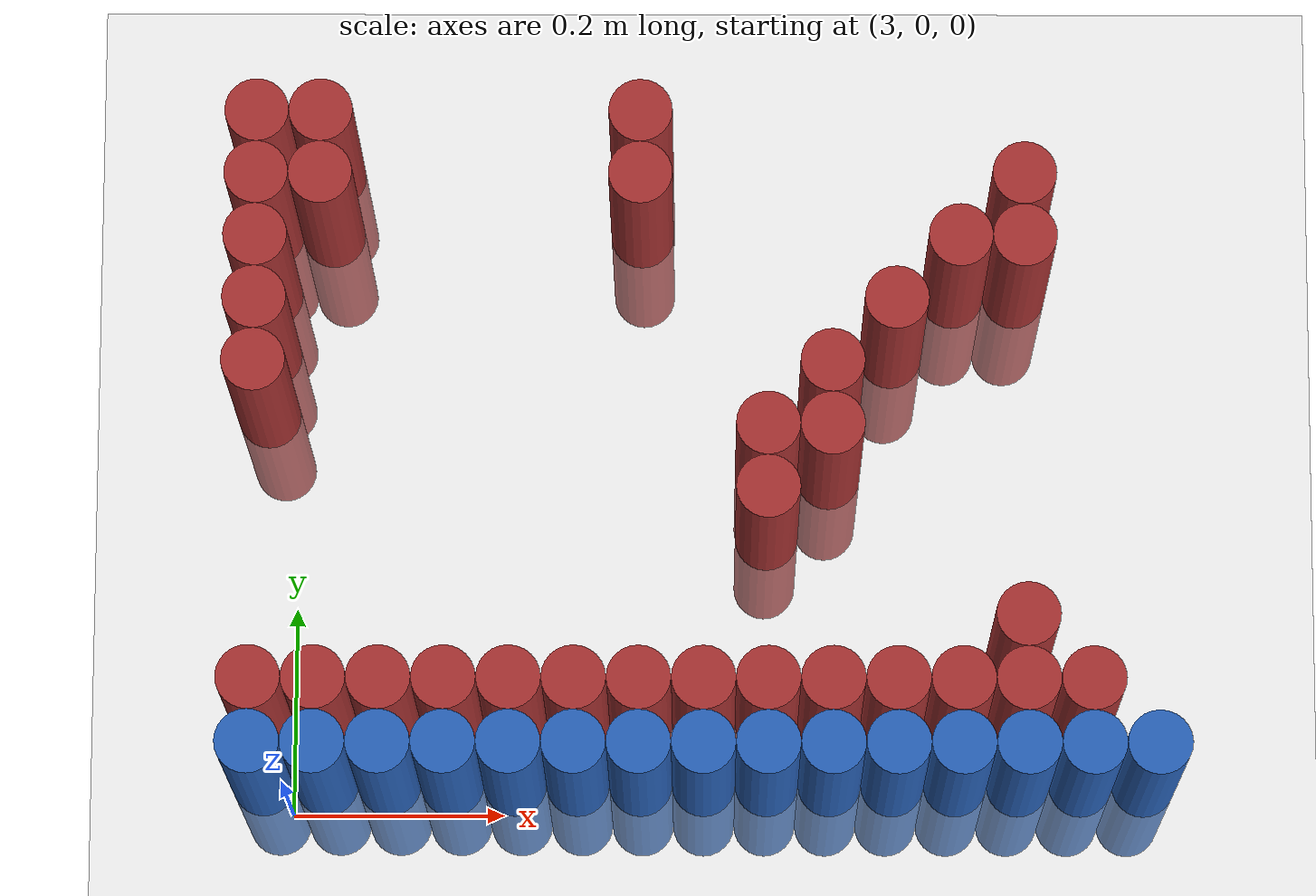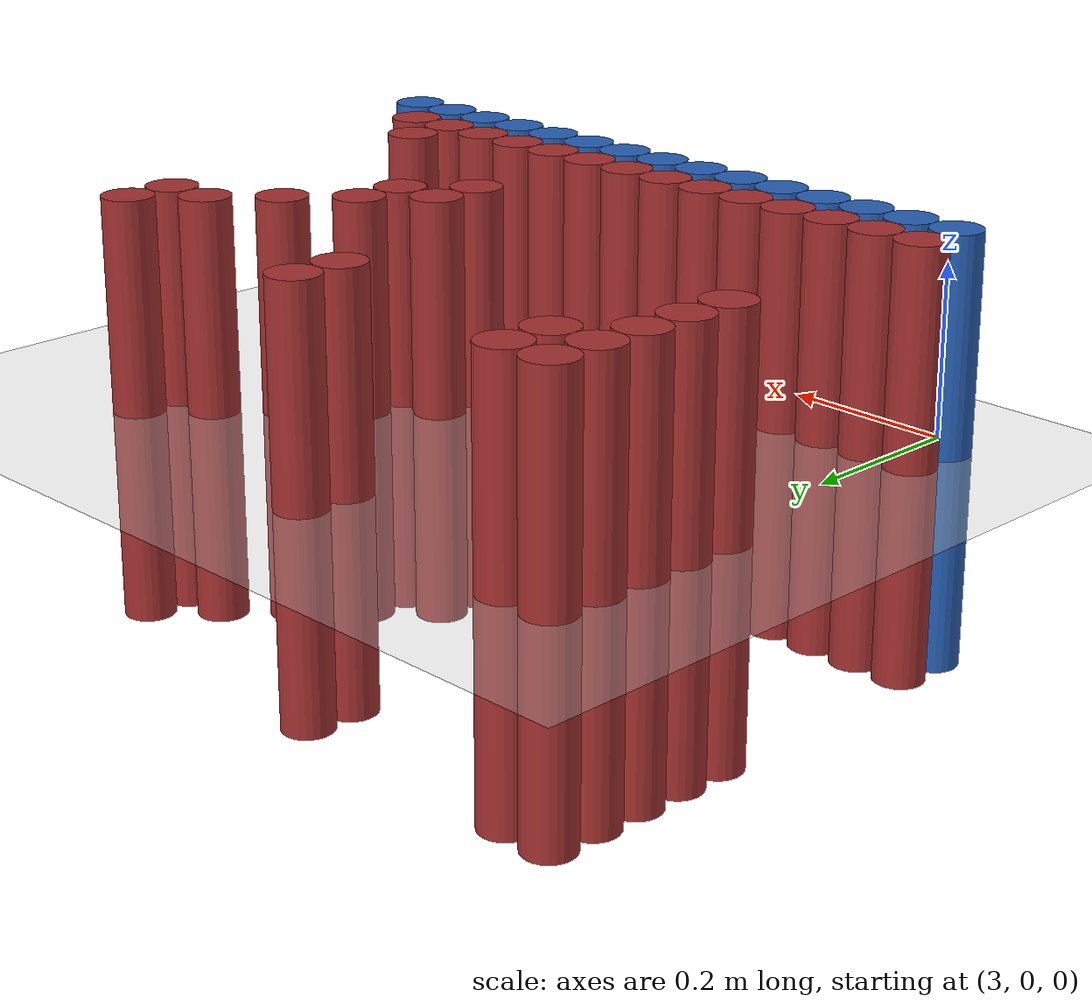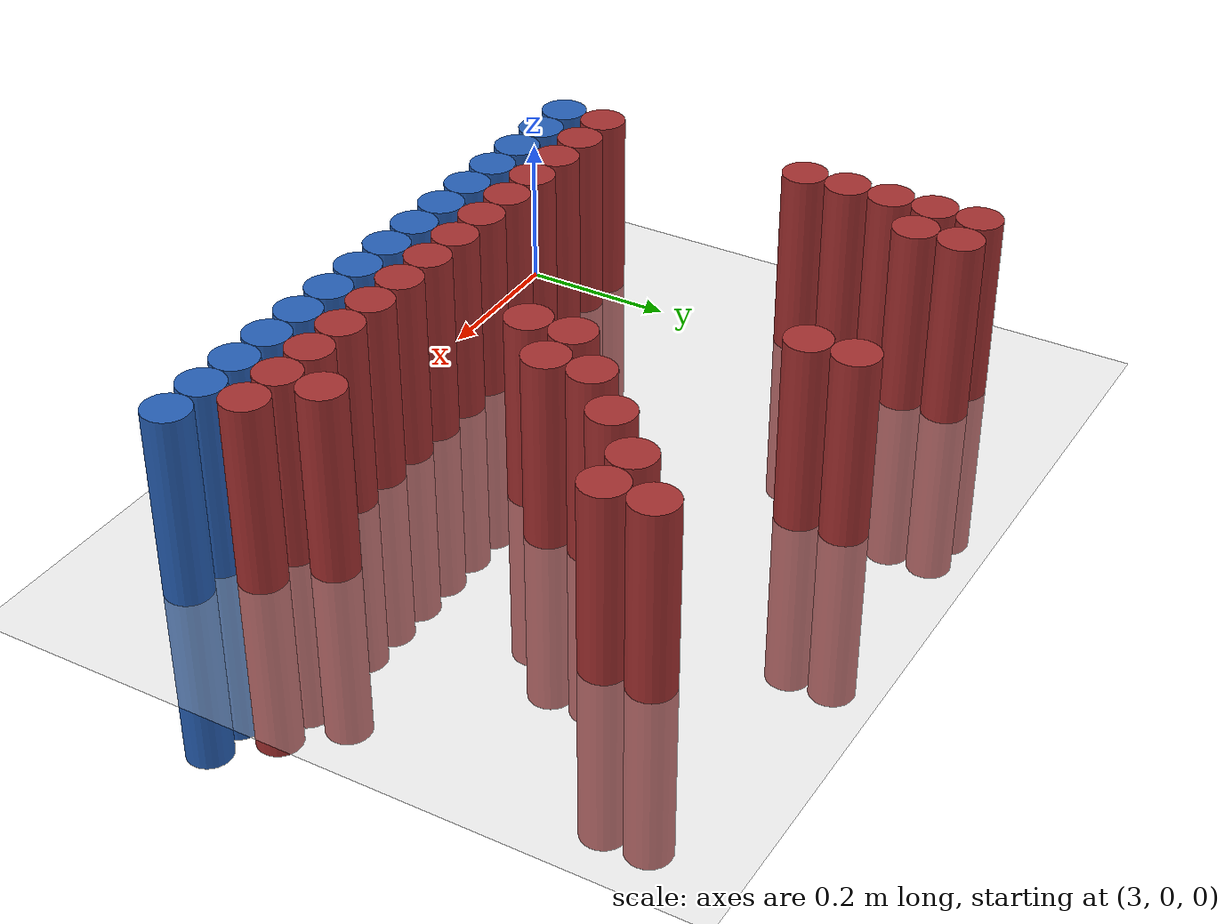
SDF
<sdf version="1.6">
 <world name="default">
  <model name="ground_plane">
   <static>1</static>
   <link name="link">
    <collision name="collision">
     <geometry><plane><normal>0 0 1</normal><size>100 100</size></plane></geometry>
     <surface><friction><ode><mu>100</mu><mu2>50</mu2></ode></friction></surface>
    </collision>
    <visual name="visual">
     <cast_shadows>0</cast_shadows>
     <geometry><plane><normal>0 0 1</normal><size>100 100</size></plane></geometry>
     <material>
      <script><uri>file://media/materials/scripts/gazebo.material</uri><name>Gazebo/Grey</name></script>
     </material>
    </visual>
   </link>
  </model>
  <model name="unit_cylinder_216">
   <static>1</static>
   <pose>2.970000 0.630000 0.000000 0.000000 0.000000 0.000000</pose>
   <link name="link">
    <inertial>
     <mass>1</mass>
     <inertia><ixx>0.145833</ixx><ixy>0</ixy><ixz>0</ixz><iyy>0.145833</iyy><iyz>0</iyz><izz>0.125</izz></inertia>
    </inertial>
    <collision name="collision">
     <geometry><cylinder><radius>0.030000</radius><length>0.5</length></cylinder></geometry>
    </collision>
    <visual name="visual">
     <geometry><cylinder><radius>0.030000</radius><length>0.5</length></cylinder></geometry>
     <material>
      <ambient>0.648000 0.192000 0.192000 1</ambient>
      <diffuse>0.648000 0.192000 0.192000 1</diffuse>
     </material>
     <material>
      <script><name>Gazebo/Grey</name><uri>file://media/materials/scripts/gazebo.material</uri></script>
     </material>
    </visual>
   </link>
  </model>
  <model name="unit_cylinder_217">
   <static>1</static>
   <pose>3.030000 0.630000 0.000000 0.000000 0.000000 0.000000</pose>
   <link name="link">
    <inertial>
     <mass>1</mass>
     <inertia><ixx>0.145833</ixx><ixy>0</ixy><ixz>0</ixz><iyy>0.145833</iyy><iyz>0</iyz><izz>0.125</izz></inertia>
    </inertial>
    <collision name="collision">
     <geometry><cylinder><radius>0.030000</radius><length>0.5</length></cylinder></geometry>
    </collision>
    <visual name="visual">
     <geometry><cylinder><radius>0.030000</radius><length>0.5</length></cylinder></geometry>
     <material>
      <ambient>0.648000 0.192000 0.192000 1</ambient>
      <diffuse>0.648000 0.192000 0.192000 1</diffuse>
     </material>
     <material>
      <script><name>Gazebo/Grey</name><uri>file://media/materials/scripts/gazebo.material</uri></script>
     </material>
    </visual>
   </link>
  </model>
  <model name="unit_cylinder_218">
   <static>1</static>
   <pose>3.330000 0.630000 0.000000 0.000000 0.000000 0.000000</pose>
   <link name="link">
    <inertial>
     <mass>1</mass>
     <inertia><ixx>0.145833</ixx><ixy>0</ixy><ixz>0</ixz><iyy>0.145833</iyy><iyz>0</iyz><izz>0.125</izz></inertia>
    </inertial>
    <collision name="collision">
     <geometry><cylinder><radius>0.030000</radius><length>0.5</length></cylinder></geometry>
    </collision>
    <visual name="visual">
     <geometry><cylinder><radius>0.030000</radius><length>0.5</length></cylinder></geometry>
     <material>
      <ambient>0.648000 0.192000 0.192000 1</ambient>
      <diffuse>0.648000 0.192000 0.192000 1</diffuse>
     </material>
     <material>
      <script><name>Gazebo/Grey</name><uri>file://media/materials/scripts/gazebo.material</uri></script>
     </material>
    </visual>
   </link>
  </model>
  <model name="unit_cylinder_229">
   <static>1</static>
   <pose>2.970000 0.570000 0.000000 0.000000 0.000000 0.000000</pose>
   <link name="link">
    <inertial>
     <mass>1</mass>
     <inertia><ixx>0.145833</ixx><ixy>0</ixy><ixz>0</ixz><iyy>0.145833</iyy><iyz>0</iyz><izz>0.125</izz></inertia>
    </inertial>
    <collision name="collision">
     <geometry><cylinder><radius>0.030000</radius><length>0.5</length></cylinder></geometry>
    </collision>
    <visual name="visual">
     <geometry><cylinder><radius>0.030000</radius><length>0.5</length></cylinder></geometry>
     <material>
      <ambient>0.648000 0.192000 0.192000 1</ambient>
      <diffuse>0.648000 0.192000 0.192000 1</diffuse>
     </material>
     <material>
      <script><name>Gazebo/Grey</name><uri>file://media/materials/scripts/gazebo.material</uri></script>
     </material>
    </visual>
   </link>
  </model>
  <model name="unit_cylinder_230">
   <static>1</static>
   <pose>3.030000 0.570000 0.000000 0.000000 0.000000 0.000000</pose>
   <link name="link">
    <inertial>
     <mass>1</mass>
     <inertia><ixx>0.145833</ixx><ixy>0</ixy><ixz>0</ixz><iyy>0.145833</iyy><iyz>0</iyz><izz>0.125</izz></inertia>
    </inertial>
    <collision name="collision">
     <geometry><cylinder><radius>0.030000</radius><length>0.5</length></cylinder></geometry>
    </collision>
    <visual name="visual">
     <geometry><cylinder><radius>0.030000</radius><length>0.5</length></cylinder></geometry>
     <material>
      <ambient>0.648000 0.192000 0.192000 1</ambient>
      <diffuse>0.648000 0.192000 0.192000 1</diffuse>
     </material>
     <material>
      <script><name>Gazebo/Grey</name><uri>file://media/materials/scripts/gazebo.material</uri></script>
     </material>
    </visual>
   </link>
  </model>
  <model name="unit_cylinder_231">
   <static>1</static>
   <pose>3.330000 0.570000 0.000000 0.000000 0.000000 0.000000</pose>
   <link name="link">
    <inertial>
     <mass>1</mass>
     <inertia><ixx>0.145833</ixx><ixy>0</ixy><ixz>0</ixz><iyy>0.145833</iyy><iyz>0</iyz><izz>0.125</izz></inertia>
    </inertial>
    <collision name="collision">
     <geometry><cylinder><radius>0.030000</radius><length>0.5</length></cylinder></geometry>
    </collision>
    <visual name="visual">
     <geometry><cylinder><radius>0.030000</radius><length>0.5</length></cylinder></geometry>
     <material>
      <ambient>0.648000 0.192000 0.192000 1</ambient>
      <diffuse>0.648000 0.192000 0.192000 1</diffuse>
     </material>
     <material>
      <script><name>Gazebo/Grey</name><uri>file://media/materials/scripts/gazebo.material</uri></script>
     </material>
    </visual>
   </link>
  </model>
  <model name="unit_cylinder_232">
   <static>1</static>
   <pose>3.690000 0.570000 0.000000 0.000000 0.000000 0.000000</pose>
   <link name="link">
    <inertial>
     <mass>1</mass>
     <inertia><ixx>0.145833</ixx><ixy>0</ixy><ixz>0</ixz><iyy>0.145833</iyy><iyz>0</iyz><izz>0.125</izz></inertia>
    </inertial>
    <collision name="collision">
     <geometry><cylinder><radius>0.030000</radius><length>0.5</length></cylinder></geometry>
    </collision>
    <visual name="visual">
     <geometry><cylinder><radius>0.030000</radius><length>0.5</length></cylinder></geometry>
     <material>
      <ambient>0.648000 0.192000 0.192000 1</ambient>
      <diffuse>0.648000 0.192000 0.192000 1</diffuse>
     </material>
     <material>
      <script><name>Gazebo/Grey</name><uri>file://media/materials/scripts/gazebo.material</uri></script>
     </material>
    </visual>
   </link>
  </model>
  <model name="unit_cylinder_240">
   <static>1</static>
   <pose>2.970000 0.510000 0.000000 0.000000 0.000000 0.000000</pose>
   <link name="link">
    <inertial>
     <mass>1</mass>
     <inertia><ixx>0.145833</ixx><ixy>0</ixy><ixz>0</ixz><iyy>0.145833</iyy><iyz>0</iyz><izz>0.125</izz></inertia>
    </inertial>
    <collision name="collision">
     <geometry><cylinder><radius>0.030000</radius><length>0.5</length></cylinder></geometry>
    </collision>
    <visual name="visual">
     <geometry><cylinder><radius>0.030000</radius><length>0.5</length></cylinder></geometry>
     <material>
      <ambient>0.648000 0.192000 0.192000 1</ambient>
      <diffuse>0.648000 0.192000 0.192000 1</diffuse>
     </material>
     <material>
      <script><name>Gazebo/Grey</name><uri>file://media/materials/scripts/gazebo.material</uri></script>
     </material>
    </visual>
   </link>
  </model>
  <model name="unit_cylinder_241">
   <static>1</static>
   <pose>3.630000 0.510000 0.000000 0.000000 0.000000 0.000000</pose>
   <link name="link">
    <inertial>
     <mass>1</mass>
     <inertia><ixx>0.145833</ixx><ixy>0</ixy><ixz>0</ixz><iyy>0.145833</iyy><iyz>0</iyz><izz>0.125</izz></inertia>
    </inertial>
    <collision name="collision">
     <geometry><cylinder><radius>0.030000</radius><length>0.5</length></cylinder></geometry>
    </collision>
    <visual name="visual">
     <geometry><cylinder><radius>0.030000</radius><length>0.5</length></cylinder></geometry>
     <material>
      <ambient>0.648000 0.192000 0.192000 1</ambient>
      <diffuse>0.648000 0.192000 0.192000 1</diffuse>
     </material>
     <material>
      <script><name>Gazebo/Grey</name><uri>file://media/materials/scripts/gazebo.material</uri></script>
     </material>
    </visual>
   </link>
  </model>
  <model name="unit_cylinder_242">
   <static>1</static>
   <pose>3.690000 0.510000 0.000000 0.000000 0.000000 0.000000</pose>
   <link name="link">
    <inertial>
     <mass>1</mass>
     <inertia><ixx>0.145833</ixx><ixy>0</ixy><ixz>0</ixz><iyy>0.145833</iyy><iyz>0</iyz><izz>0.125</izz></inertia>
    </inertial>
    <collision name="collision">
     <geometry><cylinder><radius>0.030000</radius><length>0.5</length></cylinder></geometry>
    </collision>
    <visual name="visual">
     <geometry><cylinder><radius>0.030000</radius><length>0.5</length></cylinder></geometry>
     <material>
      <ambient>0.648000 0.192000 0.192000 1</ambient>
      <diffuse>0.648000 0.192000 0.192000 1</diffuse>
     </material>
     <material>
      <script><name>Gazebo/Grey</name><uri>file://media/materials/scripts/gazebo.material</uri></script>
     </material>
    </visual>
   </link>
  </model>
  <model name="unit_cylinder_249">
   <static>1</static>
   <pose>2.970000 0.450000 0.000000 0.000000 0.000000 0.000000</pose>
   <link name="link">
    <inertial>
     <mass>1</mass>
     <inertia><ixx>0.145833</ixx><ixy>0</ixy><ixz>0</ixz><iyy>0.145833</iyy><iyz>0</iyz><izz>0.125</izz></inertia>
    </inertial>
    <collision name="collision">
     <geometry><cylinder><radius>0.030000</radius><length>0.5</length></cylinder></geometry>
    </collision>
    <visual name="visual">
     <geometry><cylinder><radius>0.030000</radius><length>0.5</length></cylinder></geometry>
     <material>
      <ambient>0.648000 0.192000 0.192000 1</ambient>
      <diffuse>0.648000 0.192000 0.192000 1</diffuse>
     </material>
     <material>
      <script><name>Gazebo/Grey</name><uri>file://media/materials/scripts/gazebo.material</uri></script>
     </material>
    </visual>
   </link>
  </model>
  <model name="unit_cylinder_250">
   <static>1</static>
   <pose>3.570000 0.450000 0.000000 0.000000 0.000000 0.000000</pose>
   <link name="link">
    <inertial>
     <mass>1</mass>
     <inertia><ixx>0.145833</ixx><ixy>0</ixy><ixz>0</ixz><iyy>0.145833</iyy><iyz>0</iyz><izz>0.125</izz></inertia>
    </inertial>
    <collision name="collision">
     <geometry><cylinder><radius>0.030000</radius><length>0.5</length></cylinder></geometry>
    </collision>
    <visual name="visual">
     <geometry><cylinder><radius>0.030000</radius><length>0.5</length></cylinder></geometry>
     <material>
      <ambient>0.648000 0.192000 0.192000 1</ambient>
      <diffuse>0.648000 0.192000 0.192000 1</diffuse>
     </material>
     <material>
      <script><name>Gazebo/Grey</name><uri>file://media/materials/scripts/gazebo.material</uri></script>
     </material>
    </visual>
   </link>
  </model>
  <model name="unit_cylinder_256">
   <static>1</static>
   <pose>2.970000 0.390000 0.000000 0.000000 0.000000 0.000000</pose>
   <link name="link">
    <inertial>
     <mass>1</mass>
     <inertia><ixx>0.145833</ixx><ixy>0</ixy><ixz>0</ixz><iyy>0.145833</iyy><iyz>0</iyz><izz>0.125</izz></inertia>
    </inertial>
    <collision name="collision">
     <geometry><cylinder><radius>0.030000</radius><length>0.5</length></cylinder></geometry>
    </collision>
    <visual name="visual">
     <geometry><cylinder><radius>0.030000</radius><length>0.5</length></cylinder></geometry>
     <material>
      <ambient>0.648000 0.192000 0.192000 1</ambient>
      <diffuse>0.648000 0.192000 0.192000 1</diffuse>
     </material>
     <material>
      <script><name>Gazebo/Grey</name><uri>file://media/materials/scripts/gazebo.material</uri></script>
     </material>
    </visual>
   </link>
  </model>
  <model name="unit_cylinder_257">
   <static>1</static>
   <pose>3.510000 0.390000 0.000000 0.000000 0.000000 0.000000</pose>
   <link name="link">
    <inertial>
     <mass>1</mass>
     <inertia><ixx>0.145833</ixx><ixy>0</ixy><ixz>0</ixz><iyy>0.145833</iyy><iyz>0</iyz><izz>0.125</izz></inertia>
    </inertial>
    <collision name="collision">
     <geometry><cylinder><radius>0.030000</radius><length>0.5</length></cylinder></geometry>
    </collision>
    <visual name="visual">
     <geometry><cylinder><radius>0.030000</radius><length>0.5</length></cylinder></geometry>
     <material>
      <ambient>0.648000 0.192000 0.192000 1</ambient>
      <diffuse>0.648000 0.192000 0.192000 1</diffuse>
     </material>
     <material>
      <script><name>Gazebo/Grey</name><uri>file://media/materials/scripts/gazebo.material</uri></script>
     </material>
    </visual>
   </link>
  </model>
  <model name="unit_cylinder_264">
   <static>1</static>
   <pose>3.450000 0.330000 0.000000 0.000000 0.000000 0.000000</pose>
   <link name="link">
    <inertial>
     <mass>1</mass>
     <inertia><ixx>0.145833</ixx><ixy>0</ixy><ixz>0</ixz><iyy>0.145833</iyy><iyz>0</iyz><izz>0.125</izz></inertia>
    </inertial>
    <collision name="collision">
     <geometry><cylinder><radius>0.030000</radius><length>0.5</length></cylinder></geometry>
    </collision>
    <visual name="visual">
     <geometry><cylinder><radius>0.030000</radius><length>0.5</length></cylinder></geometry>
     <material>
      <ambient>0.648000 0.192000 0.192000 1</ambient>
      <diffuse>0.648000 0.192000 0.192000 1</diffuse>
     </material>
     <material>
      <script><name>Gazebo/Grey</name><uri>file://media/materials/scripts/gazebo.material</uri></script>
     </material>
    </visual>
   </link>
  </model>
  <model name="unit_cylinder_265">
   <static>1</static>
   <pose>3.510000 0.330000 0.000000 0.000000 0.000000 0.000000</pose>
   <link name="link">
    <inertial>
     <mass>1</mass>
     <inertia><ixx>0.145833</ixx><ixy>0</ixy><ixz>0</ixz><iyy>0.145833</iyy><iyz>0</iyz><izz>0.125</izz></inertia>
    </inertial>
    <collision name="collision">
     <geometry><cylinder><radius>0.030000</radius><length>0.5</length></cylinder></geometry>
    </collision>
    <visual name="visual">
     <geometry><cylinder><radius>0.030000</radius><length>0.5</length></cylinder></geometry>
     <material>
      <ambient>0.648000 0.192000 0.192000 1</ambient>
      <diffuse>0.648000 0.192000 0.192000 1</diffuse>
     </material>
     <material>
      <script><name>Gazebo/Grey</name><uri>file://media/materials/scripts/gazebo.material</uri></script>
     </material>
    </visual>
   </link>
  </model>
  <model name="unit_cylinder_269">
   <static>1</static>
   <pose>3.450000 0.270000 0.000000 0.000000 0.000000 0.000000</pose>
   <link name="link">
    <inertial>
     <mass>1</mass>
     <inertia><ixx>0.145833</ixx><ixy>0</ixy><ixz>0</ixz><iyy>0.145833</iyy><iyz>0</iyz><izz>0.125</izz></inertia>
    </inertial>
    <collision name="collision">
     <geometry><cylinder><radius>0.030000</radius><length>0.5</length></cylinder></geometry>
    </collision>
    <visual name="visual">
     <geometry><cylinder><radius>0.030000</radius><length>0.5</length></cylinder></geometry>
     <material>
      <ambient>0.648000 0.192000 0.192000 1</ambient>
      <diffuse>0.648000 0.192000 0.192000 1</diffuse>
     </material>
     <material>
      <script><name>Gazebo/Grey</name><uri>file://media/materials/scripts/gazebo.material</uri></script>
     </material>
    </visual>
   </link>
  </model>
  <model name="unit_cylinder_276">
   <static>1</static>
   <pose>3.690000 0.150000 0.000000 0.000000 0.000000 0.000000</pose>
   <link name="link">
    <inertial>
     <mass>1</mass>
     <inertia><ixx>0.145833</ixx><ixy>0</ixy><ixz>0</ixz><iyy>0.145833</iyy><iyz>0</iyz><izz>0.125</izz></inertia>
    </inertial>
    <collision name="collision">
     <geometry><cylinder><radius>0.030000</radius><length>0.5</length></cylinder></geometry>
    </collision>
    <visual name="visual">
     <geometry><cylinder><radius>0.030000</radius><length>0.5</length></cylinder></geometry>
     <material>
      <ambient>0.648000 0.192000 0.192000 1</ambient>
      <diffuse>0.648000 0.192000 0.192000 1</diffuse>
     </material>
     <material>
      <script><name>Gazebo/Grey</name><uri>file://media/materials/scripts/gazebo.material</uri></script>
     </material>
    </visual>
   </link>
  </model>
  <model name="unit_cylinder_284">
   <static>1</static>
   <pose>2.970000 0.090000 0.000000 0.000000 0.000000 0.000000</pose>
   <link name="link">
    <inertial>
     <mass>1</mass>
     <inertia><ixx>0.145833</ixx><ixy>0</ixy><ixz>0</ixz><iyy>0.145833</iyy><iyz>0</iyz><izz>0.125</izz></inertia>
    </inertial>
    <collision name="collision">
     <geometry><cylinder><radius>0.030000</radius><length>0.5</length></cylinder></geometry>
    </collision>
    <visual name="visual">
     <geometry><cylinder><radius>0.030000</radius><length>0.5</length></cylinder></geometry>
     <material>
      <ambient>0.648000 0.192000 0.192000 1</ambient>
      <diffuse>0.648000 0.192000 0.192000 1</diffuse>
     </material>
     <material>
      <script><name>Gazebo/Grey</name><uri>file://media/materials/scripts/gazebo.material</uri></script>
     </material>
    </visual>
   </link>
  </model>
  <model name="unit_cylinder_285">
   <static>1</static>
   <pose>3.030000 0.090000 0.000000 0.000000 0.000000 0.000000</pose>
   <link name="link">
    <inertial>
     <mass>1</mass>
     <inertia><ixx>0.145833</ixx><ixy>0</ixy><ixz>0</ixz><iyy>0.145833</iyy><iyz>0</iyz><izz>0.125</izz></inertia>
    </inertial>
    <collision name="collision">
     <geometry><cylinder><radius>0.030000</radius><length>0.5</length></cylinder></geometry>
    </collision>
    <visual name="visual">
     <geometry><cylinder><radius>0.030000</radius><length>0.5</length></cylinder></geometry>
     <material>
      <ambient>0.648000 0.192000 0.192000 1</ambient>
      <diffuse>0.648000 0.192000 0.192000 1</diffuse>
     </material>
     <material>
      <script><name>Gazebo/Grey</name><uri>file://media/materials/scripts/gazebo.material</uri></script>
     </material>
    </visual>
   </link>
  </model>
  <model name="unit_cylinder_286">
   <static>1</static>
   <pose>3.090000 0.090000 0.000000 0.000000 0.000000 0.000000</pose>
   <link name="link">
    <inertial>
     <mass>1</mass>
     <inertia><ixx>0.145833</ixx><ixy>0</ixy><ixz>0</ixz><iyy>0.145833</iyy><iyz>0</iyz><izz>0.125</izz></inertia>
    </inertial>
    <collision name="collision">
     <geometry><cylinder><radius>0.030000</radius><length>0.5</length></cylinder></geometry>
    </collision>
    <visual name="visual">
     <geometry><cylinder><radius>0.030000</radius><length>0.5</length></cylinder></geometry>
     <material>
      <ambient>0.648000 0.192000 0.192000 1</ambient>
      <diffuse>0.648000 0.192000 0.192000 1</diffuse>
     </material>
     <material>
      <script><name>Gazebo/Grey</name><uri>file://media/materials/scripts/gazebo.material</uri></script>
     </material>
    </visual>
   </link>
  </model>
  <model name="unit_cylinder_287">
   <static>1</static>
   <pose>3.150000 0.090000 0.000000 0.000000 0.000000 0.000000</pose>
   <link name="link">
    <inertial>
     <mass>1</mass>
     <inertia><ixx>0.145833</ixx><ixy>0</ixy><ixz>0</ixz><iyy>0.145833</iyy><iyz>0</iyz><izz>0.125</izz></inertia>
    </inertial>
    <collision name="collision">
     <geometry><cylinder><radius>0.030000</radius><length>0.5</length></cylinder></geometry>
    </collision>
    <visual name="visual">
     <geometry><cylinder><radius>0.030000</radius><length>0.5</length></cylinder></geometry>
     <material>
      <ambient>0.648000 0.192000 0.192000 1</ambient>
      <diffuse>0.648000 0.192000 0.192000 1</diffuse>
     </material>
     <material>
      <script><name>Gazebo/Grey</name><uri>file://media/materials/scripts/gazebo.material</uri></script>
     </material>
    </visual>
   </link>
  </model>
  <model name="unit_cylinder_288">
   <static>1</static>
   <pose>3.210000 0.090000 0.000000 0.000000 0.000000 0.000000</pose>
   <link name="link">
    <inertial>
     <mass>1</mass>
     <inertia><ixx>0.145833</ixx><ixy>0</ixy><ixz>0</ixz><iyy>0.145833</iyy><iyz>0</iyz><izz>0.125</izz></inertia>
    </inertial>
    <collision name="collision">
     <geometry><cylinder><radius>0.030000</radius><length>0.5</length></cylinder></geometry>
    </collision>
    <visual name="visual">
     <geometry><cylinder><radius>0.030000</radius><length>0.5</length></cylinder></geometry>
     <material>
      <ambient>0.648000 0.192000 0.192000 1</ambient>
      <diffuse>0.648000 0.192000 0.192000 1</diffuse>
     </material>
     <material>
      <script><name>Gazebo/Grey</name><uri>file://media/materials/scripts/gazebo.material</uri></script>
     </material>
    </visual>
   </link>
  </model>
  <model name="unit_cylinder_289">
   <static>1</static>
   <pose>3.270000 0.090000 0.000000 0.000000 0.000000 0.000000</pose>
   <link name="link">
    <inertial>
     <mass>1</mass>
     <inertia><ixx>0.145833</ixx><ixy>0</ixy><ixz>0</ixz><iyy>0.145833</iyy><iyz>0</iyz><izz>0.125</izz></inertia>
    </inertial>
    <collision name="collision">
     <geometry><cylinder><radius>0.030000</radius><length>0.5</length></cylinder></geometry>
    </collision>
    <visual name="visual">
     <geometry><cylinder><radius>0.030000</radius><length>0.5</length></cylinder></geometry>
     <material>
      <ambient>0.648000 0.192000 0.192000 1</ambient>
      <diffuse>0.648000 0.192000 0.192000 1</diffuse>
     </material>
     <material>
      <script><name>Gazebo/Grey</name><uri>file://media/materials/scripts/gazebo.material</uri></script>
     </material>
    </visual>
   </link>
  </model>
  <model name="unit_cylinder_290">
   <static>1</static>
   <pose>3.330000 0.090000 0.000000 0.000000 0.000000 0.000000</pose>
   <link name="link">
    <inertial>
     <mass>1</mass>
     <inertia><ixx>0.145833</ixx><ixy>0</ixy><ixz>0</ixz><iyy>0.145833</iyy><iyz>0</iyz><izz>0.125</izz></inertia>
    </inertial>
    <collision name="collision">
     <geometry><cylinder><radius>0.030000</radius><length>0.5</length></cylinder></geometry>
    </collision>
    <visual name="visual">
     <geometry><cylinder><radius>0.030000</radius><length>0.5</length></cylinder></geometry>
     <material>
      <ambient>0.648000 0.192000 0.192000 1</ambient>
      <diffuse>0.648000 0.192000 0.192000 1</diffuse>
     </material>
     <material>
      <script><name>Gazebo/Grey</name><uri>file://media/materials/scripts/gazebo.material</uri></script>
     </material>
    </visual>
   </link>
  </model>
  <model name="unit_cylinder_291">
   <static>1</static>
   <pose>3.390000 0.090000 0.000000 0.000000 0.000000 0.000000</pose>
   <link name="link">
    <inertial>
     <mass>1</mass>
     <inertia><ixx>0.145833</ixx><ixy>0</ixy><ixz>0</ixz><iyy>0.145833</iyy><iyz>0</iyz><izz>0.125</izz></inertia>
    </inertial>
    <collision name="collision">
     <geometry><cylinder><radius>0.030000</radius><length>0.5</length></cylinder></geometry>
    </collision>
    <visual name="visual">
     <geometry><cylinder><radius>0.030000</radius><length>0.5</length></cylinder></geometry>
     <material>
      <ambient>0.648000 0.192000 0.192000 1</ambient>
      <diffuse>0.648000 0.192000 0.192000 1</diffuse>
     </material>
     <material>
      <script><name>Gazebo/Grey</name><uri>file://media/materials/scripts/gazebo.material</uri></script>
     </material>
    </visual>
   </link>
  </model>
  <model name="unit_cylinder_292">
   <static>1</static>
   <pose>3.450000 0.090000 0.000000 0.000000 0.000000 0.000000</pose>
   <link name="link">
    <inertial>
     <mass>1</mass>
     <inertia><ixx>0.145833</ixx><ixy>0</ixy><ixz>0</ixz><iyy>0.145833</iyy><iyz>0</iyz><izz>0.125</izz></inertia>
    </inertial>
    <collision name="collision">
     <geometry><cylinder><radius>0.030000</radius><length>0.5</length></cylinder></geometry>
    </collision>
    <visual name="visual">
     <geometry><cylinder><radius>0.030000</radius><length>0.5</length></cylinder></geometry>
     <material>
      <ambient>0.648000 0.192000 0.192000 1</ambient>
      <diffuse>0.648000 0.192000 0.192000 1</diffuse>
     </material>
     <material>
      <script><name>Gazebo/Grey</name><uri>file://media/materials/scripts/gazebo.material</uri></script>
     </material>
    </visual>
   </link>
  </model>
  <model name="unit_cylinder_293">
   <static>1</static>
   <pose>3.510000 0.090000 0.000000 0.000000 0.000000 0.000000</pose>
   <link name="link">
    <inertial>
     <mass>1</mass>
     <inertia><ixx>0.145833</ixx><ixy>0</ixy><ixz>0</ixz><iyy>0.145833</iyy><iyz>0</iyz><izz>0.125</izz></inertia>
    </inertial>
    <collision name="collision">
     <geometry><cylinder><radius>0.030000</radius><length>0.5</length></cylinder></geometry>
    </collision>
    <visual name="visual">
     <geometry><cylinder><radius>0.030000</radius><length>0.5</length></cylinder></geometry>
     <material>
      <ambient>0.648000 0.192000 0.192000 1</ambient>
      <diffuse>0.648000 0.192000 0.192000 1</diffuse>
     </material>
     <material>
      <script><name>Gazebo/Grey</name><uri>file://media/materials/scripts/gazebo.material</uri></script>
     </material>
    </visual>
   </link>
  </model>
  <model name="unit_cylinder_294">
   <static>1</static>
   <pose>3.570000 0.090000 0.000000 0.000000 0.000000 0.000000</pose>
   <link name="link">
    <inertial>
     <mass>1</mass>
     <inertia><ixx>0.145833</ixx><ixy>0</ixy><ixz>0</ixz><iyy>0.145833</iyy><iyz>0</iyz><izz>0.125</izz></inertia>
    </inertial>
    <collision name="collision">
     <geometry><cylinder><radius>0.030000</radius><length>0.5</length></cylinder></geometry>
    </collision>
    <visual name="visual">
     <geometry><cylinder><radius>0.030000</radius><length>0.5</length></cylinder></geometry>
     <material>
      <ambient>0.648000 0.192000 0.192000 1</ambient>
      <diffuse>0.648000 0.192000 0.192000 1</diffuse>
     </material>
     <material>
      <script><name>Gazebo/Grey</name><uri>file://media/materials/scripts/gazebo.material</uri></script>
     </material>
    </visual>
   </link>
  </model>
  <model name="unit_cylinder_295">
   <static>1</static>
   <pose>3.630000 0.090000 0.000000 0.000000 0.000000 0.000000</pose>
   <link name="link">
    <inertial>
     <mass>1</mass>
     <inertia><ixx>0.145833</ixx><ixy>0</ixy><ixz>0</ixz><iyy>0.145833</iyy><iyz>0</iyz><izz>0.125</izz></inertia>
    </inertial>
    <collision name="collision">
     <geometry><cylinder><radius>0.030000</radius><length>0.5</length></cylinder></geometry>
    </collision>
    <visual name="visual">
     <geometry><cylinder><radius>0.030000</radius><length>0.5</length></cylinder></geometry>
     <material>
      <ambient>0.648000 0.192000 0.192000 1</ambient>
      <diffuse>0.648000 0.192000 0.192000 1</diffuse>
     </material>
     <material>
      <script><name>Gazebo/Grey</name><uri>file://media/materials/scripts/gazebo.material</uri></script>
     </material>
    </visual>
   </link>
  </model>
  <model name="unit_cylinder_296">
   <static>1</static>
   <pose>3.690000 0.090000 0.000000 0.000000 0.000000 0.000000</pose>
   <link name="link">
    <inertial>
     <mass>1</mass>
     <inertia><ixx>0.145833</ixx><ixy>0</ixy><ixz>0</ixz><iyy>0.145833</iyy><iyz>0</iyz><izz>0.125</izz></inertia>
    </inertial>
    <collision name="collision">
     <geometry><cylinder><radius>0.030000</radius><length>0.5</length></cylinder></geometry>
    </collision>
    <visual name="visual">
     <geometry><cylinder><radius>0.030000</radius><length>0.5</length></cylinder></geometry>
     <material>
      <ambient>0.648000 0.192000 0.192000 1</ambient>
      <diffuse>0.648000 0.192000 0.192000 1</diffuse>
     </material>
     <material>
      <script><name>Gazebo/Grey</name><uri>file://media/materials/scripts/gazebo.material</uri></script>
     </material>
    </visual>
   </link>
  </model>
  <model name="unit_cylinder_297">
   <static>1</static>
   <pose>3.750000 0.090000 0.000000 0.000000 0.000000 0.000000</pose>
   <link name="link">
    <inertial>
     <mass>1</mass>
     <inertia><ixx>0.145833</ixx><ixy>0</ixy><ixz>0</ixz><iyy>0.145833</iyy><iyz>0</iyz><izz>0.125</izz></inertia>
    </inertial>
    <collision name="collision">
     <geometry><cylinder><radius>0.030000</radius><length>0.5</length></cylinder></geometry>
    </collision>
    <visual name="visual">
     <geometry><cylinder><radius>0.030000</radius><length>0.5</length></cylinder></geometry>
     <material>
      <ambient>0.648000 0.192000 0.192000 1</ambient>
      <diffuse>0.648000 0.192000 0.192000 1</diffuse>
     </material>
     <material>
      <script><name>Gazebo/Grey</name><uri>file://media/materials/scripts/gazebo.material</uri></script>
     </material>
    </visual>
   </link>
  </model>
  <model name="unit_cylinder_313">
   <static>1</static>
   <pose>2.970000 0.030000 0.000000 0.000000 0.000000 0.000000</pose>
   <link name="link">
    <inertial>
     <mass>1</mass>
     <inertia><ixx>0.145833</ixx><ixy>0</ixy><ixz>0</ixz><iyy>0.145833</iyy><iyz>0</iyz><izz>0.125</izz></inertia>
    </inertial>
    <collision name="collision">
     <geometry><cylinder><radius>0.030000</radius><length>0.5</length></cylinder></geometry>
    </collision>
    <visual name="visual">
     <geometry><cylinder><radius>0.030000</radius><length>0.5</length></cylinder></geometry>
     <material>
      <ambient>0.152000 0.379000 0.720000 1</ambient>
      <diffuse>0.152000 0.379000 0.720000 1</diffuse>
     </material>
     <material>
      <script><name>Gazebo/Grey</name><uri>file://media/materials/scripts/gazebo.material</uri></script>
     </material>
    </visual>
   </link>
  </model>
  <model name="unit_cylinder_314">
   <static>1</static>
   <pose>3.030000 0.030000 0.000000 0.000000 0.000000 0.000000</pose>
   <link name="link">
    <inertial>
     <mass>1</mass>
     <inertia><ixx>0.145833</ixx><ixy>0</ixy><ixz>0</ixz><iyy>0.145833</iyy><iyz>0</iyz><izz>0.125</izz></inertia>
    </inertial>
    <collision name="collision">
     <geometry><cylinder><radius>0.030000</radius><length>0.5</length></cylinder></geometry>
    </collision>
    <visual name="visual">
     <geometry><cylinder><radius>0.030000</radius><length>0.5</length></cylinder></geometry>
     <material>
      <ambient>0.152000 0.379000 0.720000 1</ambient>
      <diffuse>0.152000 0.379000 0.720000 1</diffuse>
     </material>
     <material>
      <script><name>Gazebo/Grey</name><uri>file://media/materials/scripts/gazebo.material</uri></script>
     </material>
    </visual>
   </link>
  </model>
  <model name="unit_cylinder_315">
   <static>1</static>
   <pose>3.090000 0.030000 0.000000 0.000000 0.000000 0.000000</pose>
   <link name="link">
    <inertial>
     <mass>1</mass>
     <inertia><ixx>0.145833</ixx><ixy>0</ixy><ixz>0</ixz><iyy>0.145833</iyy><iyz>0</iyz><izz>0.125</izz></inertia>
    </inertial>
    <collision name="collision">
     <geometry><cylinder><radius>0.030000</radius><length>0.5</length></cylinder></geometry>
    </collision>
    <visual name="visual">
     <geometry><cylinder><radius>0.030000</radius><length>0.5</length></cylinder></geometry>
     <material>
      <ambient>0.152000 0.379000 0.720000 1</ambient>
      <diffuse>0.152000 0.379000 0.720000 1</diffuse>
     </material>
     <material>
      <script><name>Gazebo/Grey</name><uri>file://media/materials/scripts/gazebo.material</uri></script>
     </material>
    </visual>
   </link>
  </model>
  <model name="unit_cylinder_316">
   <static>1</static>
   <pose>3.150000 0.030000 0.000000 0.000000 0.000000 0.000000</pose>
   <link name="link">
    <inertial>
     <mass>1</mass>
     <inertia><ixx>0.145833</ixx><ixy>0</ixy><ixz>0</ixz><iyy>0.145833</iyy><iyz>0</iyz><izz>0.125</izz></inertia>
    </inertial>
    <collision name="collision">
     <geometry><cylinder><radius>0.030000</radius><length>0.5</length></cylinder></geometry>
    </collision>
    <visual name="visual">
     <geometry><cylinder><radius>0.030000</radius><length>0.5</length></cylinder></geometry>
     <material>
      <ambient>0.152000 0.379000 0.720000 1</ambient>
      <diffuse>0.152000 0.379000 0.720000 1</diffuse>
     </material>
     <material>
      <script><name>Gazebo/Grey</name><uri>file://media/materials/scripts/gazebo.material</uri></script>
     </material>
    </visual>
   </link>
  </model>
  <model name="unit_cylinder_317">
   <static>1</static>
   <pose>3.210000 0.030000 0.000000 0.000000 0.000000 0.000000</pose>
   <link name="link">
    <inertial>
     <mass>1</mass>
     <inertia><ixx>0.145833</ixx><ixy>0</ixy><ixz>0</ixz><iyy>0.145833</iyy><iyz>0</iyz><izz>0.125</izz></inertia>
    </inertial>
    <collision name="collision">
     <geometry><cylinder><radius>0.030000</radius><length>0.5</length></cylinder></geometry>
    </collision>
    <visual name="visual">
     <geometry><cylinder><radius>0.030000</radius><length>0.5</length></cylinder></geometry>
     <material>
      <ambient>0.152000 0.379000 0.720000 1</ambient>
      <diffuse>0.152000 0.379000 0.720000 1</diffuse>
     </material>
     <material>
      <script><name>Gazebo/Grey</name><uri>file://media/materials/scripts/gazebo.material</uri></script>
     </material>
    </visual>
   </link>
  </model>
  <model name="unit_cylinder_318">
   <static>1</static>
   <pose>3.270000 0.030000 0.000000 0.000000 0.000000 0.000000</pose>
   <link name="link">
    <inertial>
     <mass>1</mass>
     <inertia><ixx>0.145833</ixx><ixy>0</ixy><ixz>0</ixz><iyy>0.145833</iyy><iyz>0</iyz><izz>0.125</izz></inertia>
    </inertial>
    <collision name="collision">
     <geometry><cylinder><radius>0.030000</radius><length>0.5</length></cylinder></geometry>
    </collision>
    <visual name="visual">
     <geometry><cylinder><radius>0.030000</radius><length>0.5</length></cylinder></geometry>
     <material>
      <ambient>0.152000 0.379000 0.720000 1</ambient>
      <diffuse>0.152000 0.379000 0.720000 1</diffuse>
     </material>
     <material>
      <script><name>Gazebo/Grey</name><uri>file://media/materials/scripts/gazebo.material</uri></script>
     </material>
    </visual>
   </link>
  </model>
  <model name="unit_cylinder_319">
   <static>1</static>
   <pose>3.330000 0.030000 0.000000 0.000000 0.000000 0.000000</pose>
   <link name="link">
    <inertial>
     <mass>1</mass>
     <inertia><ixx>0.145833</ixx><ixy>0</ixy><ixz>0</ixz><iyy>0.145833</iyy><iyz>0</iyz><izz>0.125</izz></inertia>
    </inertial>
    <collision name="collision">
     <geometry><cylinder><radius>0.030000</radius><length>0.5</length></cylinder></geometry>
    </collision>
    <visual name="visual">
     <geometry><cylinder><radius>0.030000</radius><length>0.5</length></cylinder></geometry>
     <material>
      <ambient>0.152000 0.379000 0.720000 1</ambient>
      <diffuse>0.152000 0.379000 0.720000 1</diffuse>
     </material>
     <material>
      <script><name>Gazebo/Grey</name><uri>file://media/materials/scripts/gazebo.material</uri></script>
     </material>
    </visual>
   </link>
  </model>
  <model name="unit_cylinder_320">
   <static>1</static>
   <pose>3.390000 0.030000 0.000000 0.000000 0.000000 0.000000</pose>
   <link name="link">
    <inertial>
     <mass>1</mass>
     <inertia><ixx>0.145833</ixx><ixy>0</ixy><ixz>0</ixz><iyy>0.145833</iyy><iyz>0</iyz><izz>0.125</izz></inertia>
    </inertial>
    <collision name="collision">
     <geometry><cylinder><radius>0.030000</radius><length>0.5</length></cylinder></geometry>
    </collision>
    <visual name="visual">
     <geometry><cylinder><radius>0.030000</radius><length>0.5</length></cylinder></geometry>
     <material>
      <ambient>0.152000 0.379000 0.720000 1</ambient>
      <diffuse>0.152000 0.379000 0.720000 1</diffuse>
     </material>
     <material>
      <script><name>Gazebo/Grey</name><uri>file://media/materials/scripts/gazebo.material</uri></script>
     </material>
    </visual>
   </link>
  </model>
  <model name="unit_cylinder_321">
   <static>1</static>
   <pose>3.450000 0.030000 0.000000 0.000000 0.000000 0.000000</pose>
   <link name="link">
    <inertial>
     <mass>1</mass>
     <inertia><ixx>0.145833</ixx><ixy>0</ixy><ixz>0</ixz><iyy>0.145833</iyy><iyz>0</iyz><izz>0.125</izz></inertia>
    </inertial>
    <collision name="collision">
     <geometry><cylinder><radius>0.030000</radius><length>0.5</length></cylinder></geometry>
    </collision>
    <visual name="visual">
     <geometry><cylinder><radius>0.030000</radius><length>0.5</length></cylinder></geometry>
     <material>
      <ambient>0.152000 0.379000 0.720000 1</ambient>
      <diffuse>0.152000 0.379000 0.720000 1</diffuse>
     </material>
     <material>
      <script><name>Gazebo/Grey</name><uri>file://media/materials/scripts/gazebo.material</uri></script>
     </material>
    </visual>
   </link>
  </model>
  <model name="unit_cylinder_322">
   <static>1</static>
   <pose>3.510000 0.030000 0.000000 0.000000 0.000000 0.000000</pose>
   <link name="link">
    <inertial>
     <mass>1</mass>
     <inertia><ixx>0.145833</ixx><ixy>0</ixy><ixz>0</ixz><iyy>0.145833</iyy><iyz>0</iyz><izz>0.125</izz></inertia>
    </inertial>
    <collision name="collision">
     <geometry><cylinder><radius>0.030000</radius><length>0.5</length></cylinder></geometry>
    </collision>
    <visual name="visual">
     <geometry><cylinder><radius>0.030000</radius><length>0.5</length></cylinder></geometry>
     <material>
      <ambient>0.152000 0.379000 0.720000 1</ambient>
      <diffuse>0.152000 0.379000 0.720000 1</diffuse>
     </material>
     <material>
      <script><name>Gazebo/Grey</name><uri>file://media/materials/scripts/gazebo.material</uri></script>
     </material>
    </visual>
   </link>
  </model>
  <model name="unit_cylinder_323">
   <static>1</static>
   <pose>3.570000 0.030000 0.000000 0.000000 0.000000 0.000000</pose>
   <link name="link">
    <inertial>
     <mass>1</mass>
     <inertia><ixx>0.145833</ixx><ixy>0</ixy><ixz>0</ixz><iyy>0.145833</iyy><iyz>0</iyz><izz>0.125</izz></inertia>
    </inertial>
    <collision name="collision">
     <geometry><cylinder><radius>0.030000</radius><length>0.5</length></cylinder></geometry>
    </collision>
    <visual name="visual">
     <geometry><cylinder><radius>0.030000</radius><length>0.5</length></cylinder></geometry>
     <material>
      <ambient>0.152000 0.379000 0.720000 1</ambient>
      <diffuse>0.152000 0.379000 0.720000 1</diffuse>
     </material>
     <material>
      <script><name>Gazebo/Grey</name><uri>file://media/materials/scripts/gazebo.material</uri></script>
     </material>
    </visual>
   </link>
  </model>
  <model name="unit_cylinder_324">
   <static>1</static>
   <pose>3.630000 0.030000 0.000000 0.000000 0.000000 0.000000</pose>
   <link name="link">
    <inertial>
     <mass>1</mass>
     <inertia><ixx>0.145833</ixx><ixy>0</ixy><ixz>0</ixz><iyy>0.145833</iyy><iyz>0</iyz><izz>0.125</izz></inertia>
    </inertial>
    <collision name="collision">
     <geometry><cylinder><radius>0.030000</radius><length>0.5</length></cylinder></geometry>
    </collision>
    <visual name="visual">
     <geometry><cylinder><radius>0.030000</radius><length>0.5</length></cylinder></geometry>
     <material>
      <ambient>0.152000 0.379000 0.720000 1</ambient>
      <diffuse>0.152000 0.379000 0.720000 1</diffuse>
     </material>
     <material>
      <script><name>Gazebo/Grey</name><uri>file://media/materials/scripts/gazebo.material</uri></script>
     </material>
    </visual>
   </link>
  </model>
  <model name="unit_cylinder_325">
   <static>1</static>
   <pose>3.690000 0.030000 0.000000 0.000000 0.000000 0.000000</pose>
   <link name="link">
    <inertial>
     <mass>1</mass>
     <inertia><ixx>0.145833</ixx><ixy>0</ixy><ixz>0</ixz><iyy>0.145833</iyy><iyz>0</iyz><izz>0.125</izz></inertia>
    </inertial>
    <collision name="collision">
     <geometry><cylinder><radius>0.030000</radius><length>0.5</length></cylinder></geometry>
    </collision>
    <visual name="visual">
     <geometry><cylinder><radius>0.030000</radius><length>0.5</length></cylinder></geometry>
     <material>
      <ambient>0.152000 0.379000 0.720000 1</ambient>
      <diffuse>0.152000 0.379000 0.720000 1</diffuse>
     </material>
     <material>
      <script><name>Gazebo/Grey</name><uri>file://media/materials/scripts/gazebo.material</uri></script>
     </material>
    </visual>
   </link>
  </model>
  <model name="unit_cylinder_326">
   <static>1</static>
   <pose>3.750000 0.030000 0.000000 0.000000 0.000000 0.000000</pose>
   <link name="link">
    <inertial>
     <mass>1</mass>
     <inertia><ixx>0.145833</ixx><ixy>0</ixy><ixz>0</ixz><iyy>0.145833</iyy><iyz>0</iyz><izz>0.125</izz></inertia>
    </inertial>
    <collision name="collision">
     <geometry><cylinder><radius>0.030000</radius><length>0.5</length></cylinder></geometry>
    </collision>
    <visual name="visual">
     <geometry><cylinder><radius>0.030000</radius><length>0.5</length></cylinder></geometry>
     <material>
      <ambient>0.152000 0.379000 0.720000 1</ambient>
      <diffuse>0.152000 0.379000 0.720000 1</diffuse>
     </material>
     <material>
      <script><name>Gazebo/Grey</name><uri>file://media/materials/scripts/gazebo.material</uri></script>
     </material>
    </visual>
   </link>
  </model>
  <model name="unit_cylinder_327">
   <static>1</static>
   <pose>3.810000 0.030000 0.000000 0.000000 0.000000 0.000000</pose>
   <link name="link">
    <inertial>
     <mass>1</mass>
     <inertia><ixx>0.145833</ixx><ixy>0</ixy><ixz>0</ixz><iyy>0.145833</iyy><iyz>0</iyz><izz>0.125</izz></inertia>
    </inertial>
    <collision name="collision">
     <geometry><cylinder><radius>0.030000</radius><length>0.5</length></cylinder></geometry>
    </collision>
    <visual name="visual">
     <geometry><cylinder><radius>0.030000</radius><length>0.5</length></cylinder></geometry>
     <material>
      <ambient>0.152000 0.379000 0.720000 1</ambient>
      <diffuse>0.152000 0.379000 0.720000 1</diffuse>
     </material>
     <material>
      <script><name>Gazebo/Grey</name><uri>file://media/materials/scripts/gazebo.material</uri></script>
     </material>
    </visual>
   </link>
  </model>
 </world>
</sdf>
